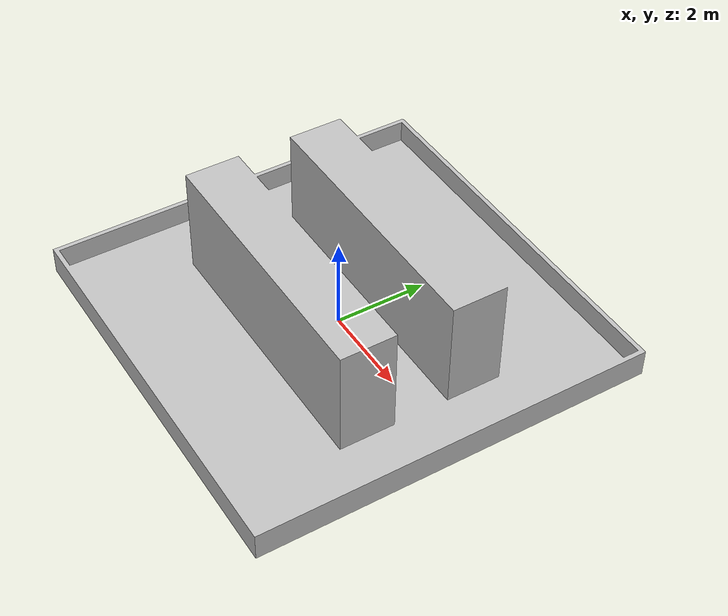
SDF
<?xml version="1.0" ?>
<sdf version="1.8">
  <model name="demo_room">
    <static>true</static>
    <link name="base_link">
      <visual name="base_link_visual">
        <pose>0 0 0 0 0 0</pose>
        <geometry>
          <mesh>
            <uri>model://demo_room/meshes/base_link.STL</uri>
          </mesh>
        </geometry>
        <material>
          <ambient>0.75 0.75 0.75 1.0</ambient>
          <diffuse>0.75 0.75 0.75 1.0</diffuse>
        </material>
      </visual>
      <collision name="base_link_collision">
        <pose>0 0 0 0 0 0</pose>
        <geometry>
          <mesh>
            <uri>model://demo_room/meshes/base_link.STL</uri>
          </mesh>
        </geometry>
      </collision>
    </link>
  </model>
</sdf>
